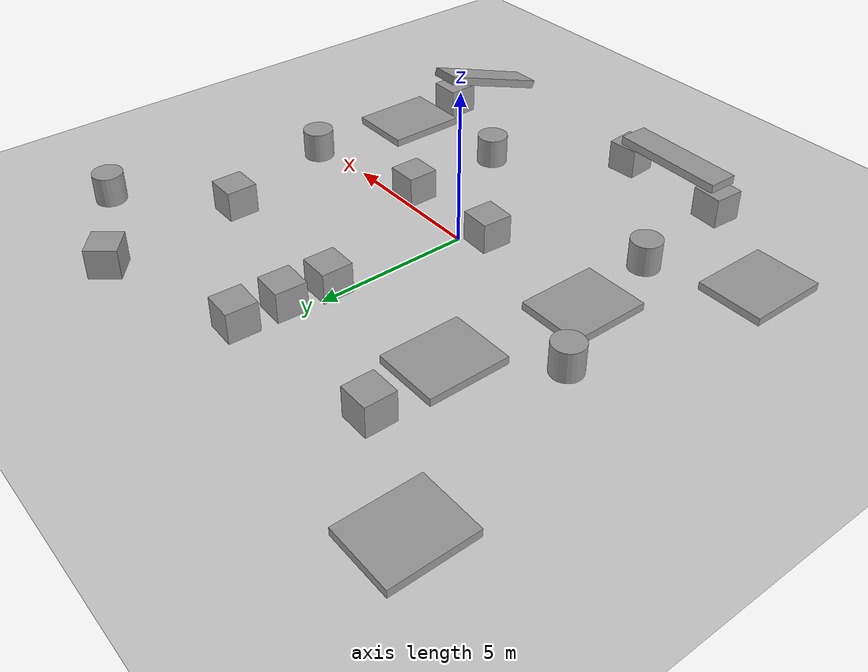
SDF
<sdf version="1.6">
 <world name="default">
  <model name="ground_plane">
   <static>1</static>
   <link name="link">
    <collision name="collision">
     <geometry><plane><normal>0 0 1</normal><size>100 100</size></plane></geometry>
     <surface><friction><ode><mu>100</mu><mu2>50</mu2></ode></friction></surface>
    </collision>
    <visual name="visual">
     <cast_shadows>0</cast_shadows>
     <geometry><plane><normal>0 0 1</normal><size>100 100</size></plane></geometry>
     <material>
      <script><uri>file://media/materials/scripts/gazebo.material</uri><name>Gazebo/Grey</name></script>
     </material>
    </visual>
   </link>
  </model>
  <light name="sun" type="directional">
   <pose>0 0 10 0 -0 0</pose>
   <diffuse>0.8 0.8 0.8 1</diffuse>
   <specular>0.1 0.1 0.1 1</specular>
   <attenuation>
    <range>1000</range>
    <constant>0.9</constant>
    <linear>0.01</linear>
    <quadratic>0.001</quadratic>
   </attenuation>
   <direction>-0.5 0.5 -1</direction>
  </light>
  <gravity>0 0 -9.8</gravity>
  <magnetic_field>6e-06 2.3e-05 -4.2e-05</magnetic_field>
  <atmosphere type="adiabatic"/>
  <physics name="default_physics" default="0" type="ode">
   <max_step_size>0.001</max_step_size>
   <real_time_factor>1</real_time_factor>
   <real_time_update_rate>1000</real_time_update_rate>
  </physics>
  <scene><ambient>0.4 0.4 0.4 1</ambient><background>0.7 0.7 0.7 1</background><shadows>1</shadows></scene>
  <spherical_coordinates>
   <surface_model>EARTH_WGS84</surface_model>
   <latitude_deg>0</latitude_deg>
   <longitude_deg>0</longitude_deg>
   <elevation>0</elevation>
   <heading_deg>0</heading_deg>
  </spherical_coordinates>
  <model name="unit_box_0">
   <pose>-0.591781 -0.636174 0.499995 0 1e-05 -0.050972</pose>
   <link name="link">
    <inertial>
     <mass>1</mass>
     <inertia>
      <ixx>0.166667</ixx>
      <ixy>0</ixy>
      <ixz>0</ixz>
      <iyy>0.166667</iyy>
      <iyz>0</iyz>
      <izz>0.166667</izz>
     </inertia>
    </inertial>
    <collision name="collision"><geometry><box><size>1 1 1</size></box></geometry></collision>
    <visual name="visual">
     <geometry><box><size>1 1 1</size></box></geometry>
     <material>
      <script><name>Gazebo/Grey</name><uri>file://media/materials/scripts/gazebo.material</uri></script>
     </material>
    </visual>
   </link>
  </model>
  <model name="unit_box_1">
   <pose>5.6902 4.45786 0.499995 -1e-05 -0 5e-06</pose>
   <link name="link">
    <inertial>
     <mass>1</mass>
     <inertia>
      <ixx>0.166667</ixx>
      <ixy>0</ixy>
      <ixz>0</ixz>
      <iyy>0.166667</iyy>
      <iyz>0</iyz>
      <izz>0.166667</izz>
     </inertia>
    </inertial>
    <collision name="collision"><geometry><box><size>1 1 1</size></box></geometry></collision>
    <visual name="visual">
     <geometry><box><size>1 1 1</size></box></geometry>
     <material>
      <script><name>Gazebo/Grey</name><uri>file://media/materials/scripts/gazebo.material</uri></script>
     </material>
    </visual>
   </link>
  </model>
  <model name="unit_box_2">
   <pose>-4.00647 -7.15341 0.49998 1e-06 -0 -0.065818</pose>
   <link name="link">
    <inertial>
     <mass>1</mass>
     <inertia>
      <ixx>0.166667</ixx>
      <ixy>0</ixy>
      <ixz>0</ixz>
      <iyy>0.166667</iyy>
      <iyz>0</iyz>
      <izz>0.166667</izz>
     </inertia>
    </inertial>
    <collision name="collision"><geometry><box><size>1 1 1</size></box></geometry></collision>
    <visual name="visual">
     <geometry><box><size>1 1 1</size></box></geometry>
     <material>
      <script><name>Gazebo/Grey</name><uri>file://media/materials/scripts/gazebo.material</uri></script>
     </material>
    </visual>
   </link>
  </model>
  <model name="unit_box_3">
   <pose>-4.67305 6.69604 0.499995 -1e-05 -0 5e-06</pose>
   <link name="link">
    <inertial>
     <mass>1</mass>
     <inertia>
      <ixx>0.166667</ixx>
      <ixy>0</ixy>
      <ixz>0</ixz>
      <iyy>0.166667</iyy>
      <iyz>0</iyz>
      <izz>0.166667</izz>
     </inertia>
    </inertial>
    <collision name="collision"><geometry><box><size>1 1 1</size></box></geometry></collision>
    <visual name="visual">
     <geometry><box><size>1 1 1</size></box></geometry>
     <material>
      <script><name>Gazebo/Grey</name><uri>file://media/materials/scripts/gazebo.material</uri></script>
     </material>
    </visual>
   </link>
  </model>
  <model name="unit_cylinder_0">
   <pose>2.96648 -3.93403 0.499996 2e-06 1e-06 0</pose>
   <link name="link">
    <inertial>
     <mass>1</mass>
     <inertia><ixx>0.145833</ixx><ixy>0</ixy><ixz>0</ixz><iyy>0.145833</iyy><iyz>0</iyz><izz>0.125</izz></inertia>
    </inertial>
    <collision name="collision">
     <geometry><cylinder><radius>0.5</radius><length>1</length></cylinder></geometry>
    </collision>
    <visual name="visual">
     <geometry><cylinder><radius>0.5</radius><length>1</length></cylinder></geometry>
     <material>
      <script><name>Gazebo/Grey</name><uri>file://media/materials/scripts/gazebo.material</uri></script>
     </material>
    </visual>
   </link>
  </model>
  <model name="unit_cylinder_1">
   <pose>8.76021 7.30253 0.499997 4e-06 3e-06 -0</pose>
   <link name="link">
    <inertial>
     <mass>1</mass>
     <inertia><ixx>0.145833</ixx><ixy>0</ixy><ixz>0</ixz><iyy>0.145833</iyy><iyz>0</iyz><izz>0.125</izz></inertia>
    </inertial>
    <collision name="collision">
     <geometry><cylinder><radius>0.5</radius><length>1</length></cylinder></geometry>
    </collision>
    <visual name="visual">
     <geometry><cylinder><radius>0.5</radius><length>1</length></cylinder></geometry>
     <material>
      <script><name>Gazebo/Grey</name><uri>file://media/materials/scripts/gazebo.material</uri></script>
     </material>
    </visual>
   </link>
  </model>
  <model name="unit_cylinder_2">
   <pose>6.95642 0.454552 0.499996 3e-06 1e-06 -0</pose>
   <link name="link">
    <inertial>
     <mass>1</mass>
     <inertia><ixx>0.145833</ixx><ixy>0</ixy><ixz>0</ixz><iyy>0.145833</iyy><iyz>0</iyz><izz>0.125</izz></inertia>
    </inertial>
    <collision name="collision">
     <geometry><cylinder><radius>0.5</radius><length>1</length></cylinder></geometry>
    </collision>
    <visual name="visual">
     <geometry><cylinder><radius>0.5</radius><length>1</length></cylinder></geometry>
     <material>
      <script><name>Gazebo/Grey</name><uri>file://media/materials/scripts/gazebo.material</uri></script>
     </material>
    </visual>
   </link>
  </model>
  <model name="unit_cylinder_3">
   <pose>-6.42329 1.64638 0.499993 -3e-06 -1e-06 -0</pose>
   <link name="link">
    <inertial>
     <mass>1</mass>
     <inertia><ixx>0.145833</ixx><ixy>0</ixy><ixz>0</ixz><iyy>0.145833</iyy><iyz>0</iyz><izz>0.125</izz></inertia>
    </inertial>
    <collision name="collision">
     <geometry><cylinder><radius>0.5</radius><length>1</length></cylinder></geometry>
    </collision>
    <visual name="visual">
     <geometry><cylinder><radius>0.5</radius><length>1</length></cylinder></geometry>
     <material>
      <script><name>Gazebo/Grey</name><uri>file://media/materials/scripts/gazebo.material</uri></script>
     </material>
    </visual>
   </link>
  </model>
  <model name="unit_cylinder_4">
   <pose>-4.49405 -3.38824 0.499996 3e-06 1e-06 -0</pose>
   <link name="link">
    <inertial>
     <mass>1</mass>
     <inertia><ixx>0.145833</ixx><ixy>0</ixy><ixz>0</ixz><iyy>0.145833</iyy><iyz>0</iyz><izz>0.125</izz></inertia>
    </inertial>
    <collision name="collision">
     <geometry><cylinder><radius>0.5</radius><length>1</length></cylinder></geometry>
    </collision>
    <visual name="visual">
     <geometry><cylinder><radius>0.5</radius><length>1</length></cylinder></geometry>
     <material>
      <script><name>Gazebo/Grey</name><uri>file://media/materials/scripts/gazebo.material</uri></script>
     </material>
    </visual>
   </link>
  </model>
  <model name="unit_box_4">
   <pose>0.347087 4.51551 0.499995 1e-05 0 -0.011616</pose>
   <link name="link">
    <inertial>
     <mass>1</mass>
     <inertia>
      <ixx>0.166667</ixx>
      <ixy>0</ixy>
      <ixz>0</ixz>
      <iyy>0.166667</iyy>
      <iyz>0</iyz>
      <izz>0.166667</izz>
     </inertia>
    </inertial>
    <collision name="collision"><geometry><box><size>1 1 1</size></box></geometry></collision>
    <visual name="visual">
     <geometry><box><size>1 1 1</size></box></geometry>
     <material>
      <script><name>Gazebo/Grey</name><uri>file://media/materials/scripts/gazebo.material</uri></script>
     </material>
    </visual>
   </link>
  </model>
  <model name="unit_box_5">
   <pose>0.47042 7.50168 0.5 0 0 -0.037188</pose>
   <link name="link">
    <inertial>
     <mass>1</mass>
     <inertia>
      <ixx>0.166667</ixx>
      <ixy>0</ixy>
      <ixz>0</ixz>
      <iyy>0.166667</iyy>
      <iyz>0</iyz>
      <izz>0.166667</izz>
     </inertia>
    </inertial>
    <collision name="collision"><geometry><box><size>1 1 1</size></box></geometry></collision>
    <visual name="visual">
     <geometry><box><size>1 1 1</size></box></geometry>
     <material>
      <script><name>Gazebo/Grey</name><uri>file://media/materials/scripts/gazebo.material</uri></script>
     </material>
    </visual>
   </link>
  </model>
  <model name="unit_box_6">
   <pose>0.407187 5.99067 0.5 0 0 -0.038686</pose>
   <link name="link">
    <inertial>
     <mass>1</mass>
     <inertia>
      <ixx>0.166667</ixx>
      <ixy>0</ixy>
      <ixz>0</ixz>
      <iyy>0.166667</iyy>
      <iyz>0</iyz>
      <izz>0.166667</izz>
     </inertia>
    </inertial>
    <collision name="collision"><geometry><box><size>1 1 0.999999</size></box></geometry></collision>
    <visual name="visual">
     <geometry><box><size>1 1 0.999999</size></box></geometry>
     <material>
      <script><name>Gazebo/Grey</name><uri>file://media/materials/scripts/gazebo.material</uri></script>
     </material>
    </visual>
   </link>
  </model>
  <model name="unit_box_7">
   <pose>5.21007 9.04528 0.5 0 0 -0.677764</pose>
   <link name="link">
    <inertial>
     <mass>1</mass>
     <inertia>
      <ixx>0.166667</ixx>
      <ixy>0</ixy>
      <ixz>0</ixz>
      <iyy>0.166667</iyy>
      <iyz>0</iyz>
      <izz>0.166667</izz>
     </inertia>
    </inertial>
    <collision name="collision"><geometry><box><size>1 1 1</size></box></geometry></collision>
    <visual name="visual">
     <geometry><box><size>1 1 1</size></box></geometry>
     <material>
      <script><name>Gazebo/Grey</name><uri>file://media/materials/scripts/gazebo.material</uri></script>
     </material>
    </visual>
   </link>
  </model>
  <model name="unit_box_8">
   <pose>6.67147 -5.32698 0.5 -1e-06 -1e-06 -0.000775</pose>
   <link name="link">
    <inertial>
     <mass>1</mass>
     <inertia>
      <ixx>0.166667</ixx>
      <ixy>0</ixy>
      <ixz>0</ixz>
      <iyy>0.166667</iyy>
      <iyz>0</iyz>
      <izz>0.166667</izz>
     </inertia>
    </inertial>
    <collision name="collision"><geometry><box><size>1 1 1</size></box></geometry></collision>
    <visual name="visual">
     <geometry><box><size>1 1 1</size></box></geometry>
     <material>
      <script><name>Gazebo/Grey</name><uri>file://media/materials/scripts/gazebo.material</uri></script>
     </material>
    </visual>
   </link>
  </model>
  <model name="unit_box_9">
   <pose>-0.281301 -7.27179 0.499999 0 3e-06 0.081578</pose>
   <link name="link">
    <inertial>
     <mass>1</mass>
     <inertia>
      <ixx>0.166667</ixx>
      <ixy>0</ixy>
      <ixz>0</ixz>
      <iyy>0.166667</iyy>
      <iyz>0</iyz>
      <izz>0.166667</izz>
     </inertia>
    </inertial>
    <collision name="collision"><geometry><box><size>1 1 1</size></box></geometry></collision>
    <visual name="visual">
     <geometry><box><size>1 1 1</size></box></geometry>
     <material>
      <script><name>Gazebo/Grey</name><uri>file://media/materials/scripts/gazebo.material</uri></script>
     </material>
    </visual>
   </link>
  </model>
  <model name="unit_box_10">
   <pose>-2.12187 -7.33363 1.14288 1e-06 -6e-06 -0.023957</pose>
   <link name="link">
    <inertial>
     <mass>1</mass>
     <inertia>
      <ixx>0.166667</ixx>
      <ixy>0</ixy>
      <ixz>0</ixz>
      <iyy>0.166667</iyy>
      <iyz>0</iyz>
      <izz>0.166667</izz>
     </inertia>
    </inertial>
    <collision name="collision"><geometry><box><size>3.88169 1 0.285786</size></box></geometry></collision>
    <visual name="visual">
     <geometry><box><size>3.88169 1 0.285786</size></box></geometry>
     <material>
      <script><name>Gazebo/Grey</name><uri>file://media/materials/scripts/gazebo.material</uri></script>
     </material>
    </visual>
   </link>
  </model>
  <model name="unit_box_11">
   <pose>6.61346 -6.77369 0.824238 0.333749 -3.6e-05 -0.000606</pose>
   <link name="link">
    <inertial>
     <mass>1</mass>
     <inertia>
      <ixx>0.166667</ixx>
      <ixy>0</ixy>
      <ixz>0</ixz>
      <iyy>0.166667</iyy>
      <iyz>0</iyz>
      <izz>0.166667</izz>
     </inertia>
    </inertial>
    <collision name="collision"><geometry><box><size>1 4.20089 0.288182</size></box></geometry></collision>
    <visual name="visual">
     <geometry><box><size>1 4.20089 0.288182</size></box></geometry>
     <material>
      <script><name>Gazebo/Grey</name><uri>file://media/materials/scripts/gazebo.material</uri></script>
     </material>
    </visual>
   </link>
  </model>
  <model name="unit_box_12">
   <pose>2.84548 -0.488287 0.5 0 -0 0</pose>
   <link name="link">
    <inertial>
     <mass>1</mass>
     <inertia>
      <ixx>0.166667</ixx>
      <ixy>0</ixy>
      <ixz>0</ixz>
      <iyy>0.166667</iyy>
      <iyz>0</iyz>
      <izz>0.166667</izz>
     </inertia>
    </inertial>
    <collision name="collision"><geometry><box><size>1 0.999998 1</size></box></geometry></collision>
    <visual name="visual">
     <geometry><box><size>1 0.999998 1</size></box></geometry>
     <material>
      <script><name>Gazebo/Grey</name><uri>file://media/materials/scripts/gazebo.material</uri></script>
     </material>
    </visual>
   </link>
  </model>
  <model name="unit_box_12_clone">
   <pose>-4.84091 -0.517135 0.125755 0 1.4e-05 0</pose>
   <link name="link">
    <inertial>
     <mass>1</mass>
     <inertia>
      <ixx>0.166667</ixx>
      <ixy>0</ixy>
      <ixz>0</ixz>
      <iyy>0.166667</iyy>
      <iyz>0</iyz>
      <izz>0.166667</izz>
     </inertia>
    </inertial>
    <collision name="collision"><geometry><box><size>2.14743 2.63582 0.25154</size></box></geometry></collision>
    <visual name="visual">
     <geometry><box><size>2.14743 2.63582 0.25154</size></box></geometry>
     <material>
      <script><name>Gazebo/Grey</name><uri>file://media/materials/scripts/gazebo.material</uri></script>
     </material>
    </visual>
   </link>
  </model>
  <model name="unit_box_12_clone_0">
   <pose>-7.30396 -5.11108 0.125755 -0 1.4e-05 -0.006695</pose>
   <link name="link">
    <inertial>
     <mass>1</mass>
     <inertia>
      <ixx>0.166667</ixx>
      <ixy>0</ixy>
      <ixz>0</ixz>
      <iyy>0.166667</iyy>
      <iyz>0</iyz>
      <izz>0.166667</izz>
     </inertia>
    </inertial>
    <collision name="collision"><geometry><box><size>2.14743 2.63582 0.25154</size></box></geometry></collision>
    <visual name="visual">
     <geometry><box><size>2.14743 2.63582 0.25154</size></box></geometry>
     <material>
      <script><name>Gazebo/Grey</name><uri>file://media/materials/scripts/gazebo.material</uri></script>
     </material>
    </visual>
   </link>
  </model>
  <model name="unit_box_12_clone_1">
   <pose>-4.1997 3.95523 0.125755 0 1.4e-05 0</pose>
   <link name="link">
    <inertial>
     <mass>1</mass>
     <inertia>
      <ixx>0.166667</ixx>
      <ixy>0</ixy>
      <ixz>0</ixz>
      <iyy>0.166667</iyy>
      <iyz>0</iyz>
      <izz>0.166667</izz>
     </inertia>
    </inertial>
    <collision name="collision"><geometry><box><size>2.14743 2.63582 0.25154</size></box></geometry></collision>
    <visual name="visual">
     <geometry><box><size>2.14743 2.63582 0.25154</size></box></geometry>
     <material>
      <script><name>Gazebo/Grey</name><uri>file://media/materials/scripts/gazebo.material</uri></script>
     </material>
    </visual>
   </link>
  </model>
  <model name="unit_box_12_clone_2">
   <pose>-8.15531 8.23748 0.125755 0 1.4e-05 0</pose>
   <link name="link">
    <inertial>
     <mass>1</mass>
     <inertia>
      <ixx>0.166667</ixx>
      <ixy>0</ixy>
      <ixz>0</ixz>
      <iyy>0.166667</iyy>
      <iyz>0</iyz>
      <izz>0.166667</izz>
     </inertia>
    </inertial>
    <collision name="collision"><geometry><box><size>2.14743 2.63582 0.25154</size></box></geometry></collision>
    <visual name="visual">
     <geometry><box><size>2.14743 2.63582 0.25154</size></box></geometry>
     <material>
      <script><name>Gazebo/Grey</name><uri>file://media/materials/scripts/gazebo.material</uri></script>
     </material>
    </visual>
   </link>
  </model>
  <model name="unit_box_12_clone_3">
   <pose>6.77813 -3.30191 0.125755 0 1.4e-05 0</pose>
   <link name="link">
    <inertial>
     <mass>1</mass>
     <inertia>
      <ixx>0.166667</ixx>
      <ixy>0</ixy>
      <ixz>0</ixz>
      <iyy>0.166667</iyy>
      <iyz>0</iyz>
      <izz>0.166667</izz>
     </inertia>
    </inertial>
    <collision name="collision"><geometry><box><size>2.14743 2.63582 0.25154</size></box></geometry></collision>
    <visual name="visual">
     <geometry><box><size>2.14743 2.63582 0.25154</size></box></geometry>
     <material>
      <script><name>Gazebo/Grey</name><uri>file://media/materials/scripts/gazebo.material</uri></script>
     </material>
    </visual>
   </link>
  </model>
 </world>
</sdf>
